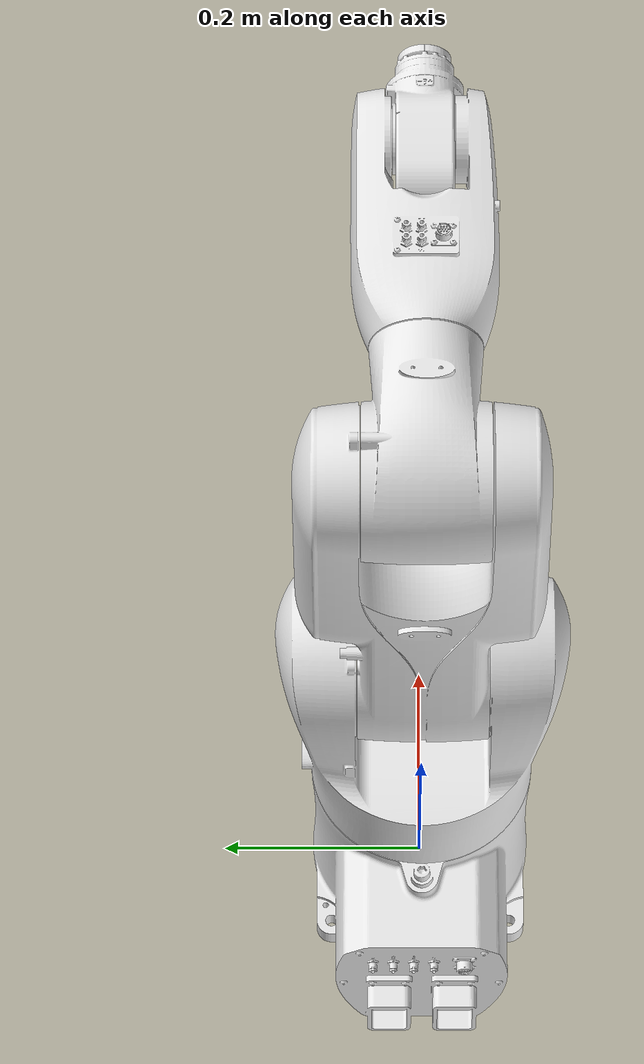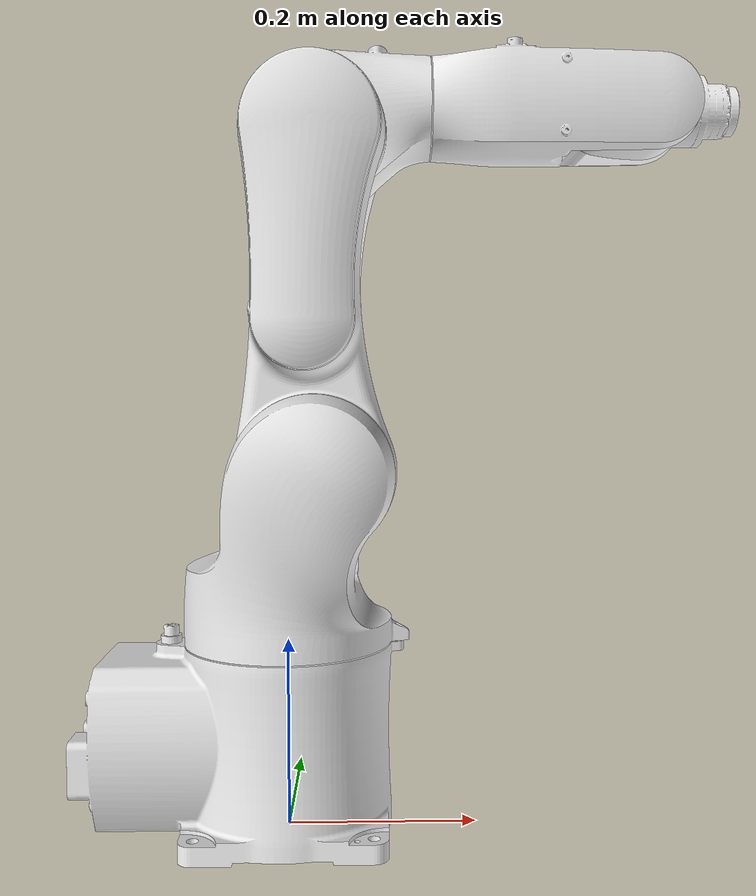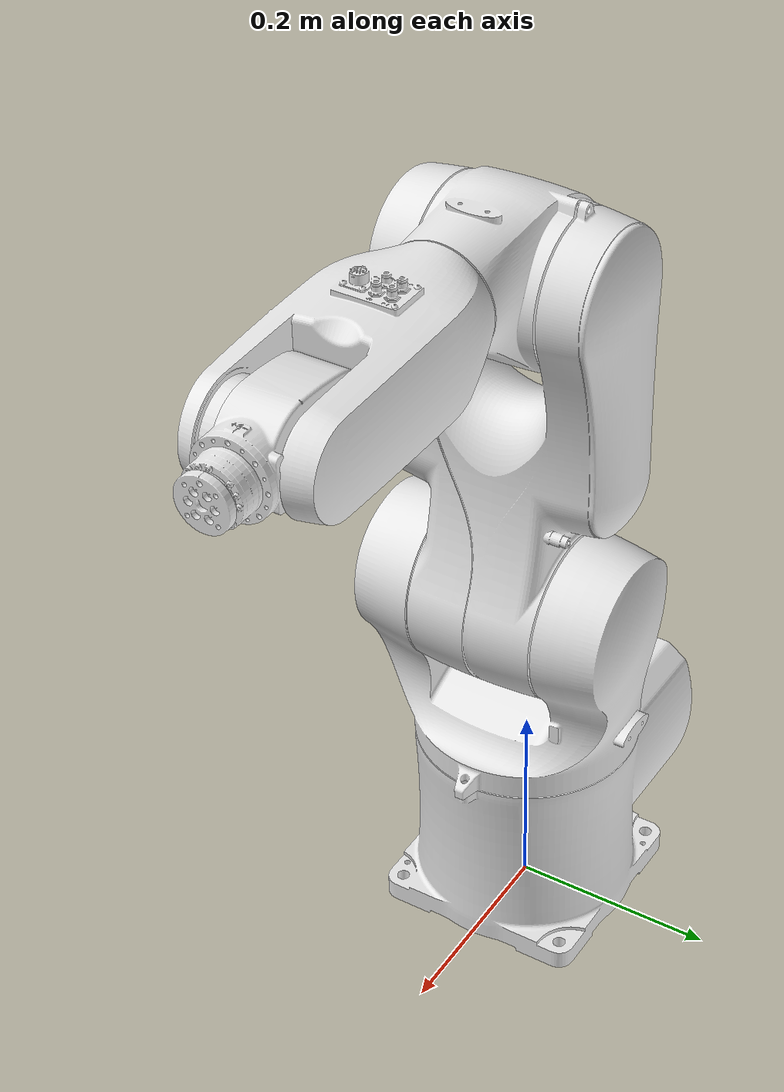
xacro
<?xml version="1.0"?>
<!-- XB6 manipulator -->
<robot name="XB6" xmlns:xacro="http://www.ros.org/wiki/xacro">

  <!-- Constants for robot dimensions -->
  <!-- Constants for robot dimensions -->
  <xacro:property name="PI" value="3.1415926535897931"/>
  <xacro:property name="mass" value="1" /> <!-- arbitrary value for mass -->
  <xacro:property name="width" value="0.1" /> <!-- Square dimensions (widthxwidth) of beams -->
  <xacro:property name="height1" value="2" /> <!-- Link 1 -->
  <xacro:property name="height2" value="1" /> <!-- Link 2 -->
  <xacro:property name="height3" value="1" /> <!-- Link 3 -->
  <xacro:property name="camera_link" value="0.05" /> <!-- Size of square 'camera' box -->
  <xacro:property name="axel_offset" value="0.05" /> <!-- Space btw top of beam and the each joint -->

  <!-- Import all Gazebo-customization elements, including Gazebo colors -->
  <xacro:include filename="$(find XB6_description)/urdf/XB6.gazebo" />
  <!-- Import Rviz colors -->
  <xacro:include filename="$(find XB6_description)/urdf/materials.xacro" />

  <!-- Used for fixing robot to Gazebo 'base_link' -->
  <link name="world"/>

  <joint name="fixed" type="fixed">
    <parent link="world"/>
    <child link="XB6_base"/>
  </joint>

<!--                           base_link                             -->

  <link name="XB6_base">
    <visual>
      <geometry>
        <mesh filename="package://XB6_description/meshes/visual/XB6_base.stl" scale="0.001 0.001 0.001"/>
      </geometry>
       <origin rpy="0 0 0" xyz="0.0 0.0 0.0"/>
       <material name="white"/>
    </visual>
    <inertial>

  <mass value="6.017195265"/>
  <inertia ixx="0.0360869293925" ixy="0.000115216693353" ixz="-1.7544333693e-05" iyy="0.0284183462347" iyz="-1.3689740881e-05" izz="0.0330286412795"/>
  <origin rpy="0 0 0" xyz="0.000196283077 -0.003194724222 0.227348149147"/>

    </inertial>
    <collision>
      <geometry>
        <mesh filename="package://XB6_description/meshes/collision/XB6_base.stl" scale="0.001 0.001 0.001"/>
      </geometry>
      <origin rpy="0 0 0" xyz="0.0 0.0 0.0"/>
    </collision>
  </link>

  <joint name="joint1" type="revolute">
    <parent link="XB6_base"/>
    <child link="XB6_link1"/>
   <limit effort="223.088" lower="-2.9670597284" upper="2.9670597284" velocity="6.544984695"/>
    <axis xyz="0 0 1"/>
    <origin rpy="0 0 0" xyz="0.0 0.0 0.20"/>

</joint>

  <transmission name="tran1">
    <type>transmission_interface/SimpleTransmission</type>
    <joint name="joint1">
      <hardwareInterface>EffortJointInterface</hardwareInterface>
    </joint>
    <actuator name="motor1">
      <hardwareInterface>EffortJointInterface</hardwareInterface>
      <mechanicalReduction>1</mechanicalReduction>
    </actuator>
  </transmission>

<!--                                         XB6_link 1                                             -->

  <link name="XB6_link1">
    <visual>
      <geometry>
        <mesh filename="package://XB6_description/meshes/visual/XB6_link1.stl" scale="0.001 0.001 0.001"/>
      </geometry>
      <origin rpy="0 0 0" xyz="0.0 0 0.0"/>
      <material name="white"/>
    </visual>

    <inertial>

     <mass value="5.398500"/>
     <inertia ixx="0.062766" ixy="0.002246" ixz="0.004636" iyy="0.043954" iyz="0.008292" izz="0.330216"/>
     <origin rpy="0 0 0" xyz="0.048526 0.021590 0.105190"/>

     </inertial>

    <collision>
      <geometry>
        <mesh filename="package://XB6_description/meshes/collision/XB6_link1.stl" scale="0.001 0.001 0.001"/>
      </geometry>
       <origin rpy="0 0 0" xyz="0.0 0  0.0"/>
    </collision>
  </link>

  <joint name="joint2" type="revolute">
    <parent link="XB6_link1"/>
    <child link="XB6_link2"/>
    <limit effort="278" lower="-1.6580627894" upper="2.3561944902" velocity="5.235987756"/>
    <axis xyz="0 1 0"/>
	<origin rpy="0 0 0" xyz="0.03 0.0 0.18"/>
    </joint>

   <transmission name="tran2">
     <type>transmission_interface/SimpleTransmission</type>
    <joint name="joint2">
      <hardwareInterface>EffortJointInterface</hardwareInterface>
    </joint>
    <actuator name="motor2">
      <hardwareInterface>EffortJointInterface</hardwareInterface>
      <mechanicalReduction>1</mechanicalReduction>
    </actuator>
  </transmission>

<!--                                XB6_link 2                    -->

  <link name="XB6_link2">
    <visual>
      <geometry>
        <mesh filename="package://XB6_description/meshes/visual/XB6_link2.stl" scale="0.001 0.001 0.001"/>
      </geometry>
     <origin rpy="0 0 0" xyz="0 0 0.0"/>
     <material name="white"/>
    </visual>

    <inertial>
    <mass value="17.216886"/>
    <inertia ixx="0.322579" ixy="0.000116" ixz="-0.003241" iyy="0.717652" iyz="0.004003" izz="0.079577"/>
    <origin rpy="0 0 0" xyz="-0.002827 0.022603 0.099333"/>
    </inertial>

    <collision>
      <geometry>
        <mesh filename="package://XB6_description/meshes/collision/XB6_link2.stl" scale="0.001 0.001 0.001"/>
      </geometry>
      <origin rpy="0 0 0" xyz="0 0 0.0"/>
    </collision>
  </link>

  <joint name="joint3" type="revolute">
    <parent link="XB6_link2"/>
    <child link="XB6_link3"/>
   <limit effort="210" lower="-3.6651914292" upper="1.1519173063" velocity="6.544984695"/>
    <axis xyz="0 1 0"/>
    <origin rpy="0 0 0" xyz="0.0 0.0 0.34"/>

  </joint>

   <transmission name="tran3">
    <type>transmission_interface/SimpleTransmission</type>
    <joint name="joint3">
      <hardwareInterface>EffortJointInterface</hardwareInterface>
    </joint>
    <actuator name="motor3">
      <hardwareInterface>EffortJointInterface</hardwareInterface>
      <mechanicalReduction>1</mechanicalReduction>
    </actuator>
  </transmission>

  <link name="XB6_link3">
    <visual>
      <geometry>
        <mesh filename="package://XB6_description/meshes/visual/XB6_link3.stl" scale="0.001 0.001 0.001"/>
      </geometry>
	<origin rpy="0 0 0" xyz="0.0 0.0 0.0"/>
      <material name="white"/>
    </visual>

    <inertial>

    <mass value="6.795353"/>
    <inertia ixx="0.012171" ixy="0.000103" ixz="0.006378" iyy="0.319676" iyz="0.000070" izz="0.027475"/>
    <origin rpy="0 0 0" xyz="0.035922 0.000116 0.009259"/>

    </inertial>

    <collision>
      <geometry>
        <mesh filename="package://XB6_description/meshes/collision/XB6_link3.stl" scale="0.001 0.001 0.001"/>
      </geometry>
         <origin rpy="0 0 0" xyz="0.0 0.0 0.0"/>
      </collision>
  </link>

  <joint name="joint4" type="revolute">
    <parent link="XB6_link3"/>
    <child link="XB6_link4"/>
    <limit effort="77.355" lower="-2.9670597284" upper="2.9670597284" velocity="6.544984695"/>
<!--     lower="-2.79" upper="2.79" -->
    <axis xyz="1 0 0"/>
    <origin rpy="0 0 0" xyz="0.12 0.0 0.035"/>
  </joint>

  <transmission name="tran4">
    <type>transmission_interface/SimpleTransmission</type>
    <joint name="joint4">
      <hardwareInterface>EffortJointInterface</hardwareInterface>
    </joint>
    <actuator name="motor4">
      <hardwareInterface>EffortJointInterface</hardwareInterface>
      <mechanicalReduction>1</mechanicalReduction>
    </actuator>
  </transmission>

  <link name="XB6_link4">
    <visual>
      <geometry>
        <mesh filename="package://XB6_description/meshes/visual/XB6_link4.stl" scale="0.001 0.001 0.001"/>
      </geometry>
	<origin rpy="0 0 0" xyz="0.0 0.0 0.0"/>
      <material name="white"/>
    </visual>
    <inertial>

    <mass value="3.999356"/>
    <inertia ixx="0.167289" ixy="0.002181" ixz="-0.000006" iyy="0.020615" iyz="0.000031" izz="0.025169"/>
    <origin rpy="0 0 0" xyz="0.120344 0.004572 -0.000141"/>

    </inertial>
    <collision>
      <geometry>
        <mesh filename="package://XB6_description/meshes/collision/XB6_link4.stl" scale="0.001 0.001 0.001"/>
      </geometry>
	<origin rpy="0 0 0" xyz="0.0 0.0 0.0"/>
    </collision>
  </link>

  <joint name="joint5" type="revolute">
    <parent link="XB6_link4"/>
    <child link="XB6_link5"/>
   <limit effort="44.3232" lower="-2.3561944902" upper="2.3561944902" velocity="6.7020643277"/>
    <axis xyz="0 1 0"/>
   <origin rpy="0 0 0" xyz="0.225 0.0 0.0"/>
  </joint>

  <transmission name="tran5">
    <type>transmission_interface/SimpleTransmission</type>
    <joint name="joint5">
      <hardwareInterface>EffortJointInterface</hardwareInterface>
    </joint>
    <actuator name="motor5">
      <hardwareInterface>EffortJointInterface</hardwareInterface>
      <mechanicalReduction>1</mechanicalReduction>
    </actuator>
  </transmission>

  <link name="XB6_link5">
    <visual>
      <geometry>
        <mesh filename="package://XB6_description/meshes/visual/XB6_link5.stl" scale="0.001 0.001 0.001"/>
      </geometry>
       <origin rpy="0 0 0" xyz="0 0 0"/>
      <material name="white"/>

      </visual>
    <inertial>

      <mass value="2.484109"/>
    <inertia ixx="0.001308" ixy="-0.000005" ixz="-0.000063" iyy="0.035775" iyz="0.000005" izz="0.006039"/>
      <origin rpy="0 0 0" xyz="0.004529 0.000438 0.000626"/>

    </inertial>

    <collision>
      <geometry>
        <mesh filename="package://XB6_description/meshes/collision/XB6_link5.stl" scale="0.001 0.001 0.001"/>
      </geometry>
       <origin rpy="0 0 0" xyz="0 0 0"/>
    </collision>
  </link>

  <joint name="joint6" type="revolute">
    <parent link="XB6_link5"/>
    <child link="XB6_link6"/>
    <limit effort="29.925" lower="-6.2831853072" upper="6.2831853072" velocity="10.471975512"/>
    <axis xyz="1 0 0"/>
    <origin xyz="0.090 0.0 0.0" rpy="0.0 0.0 0.0" />
  </joint>

  <transmission name="tran6">
    <type>transmission_interface/SimpleTransmission</type>
    <joint name="joint6">
      <hardwareInterface>EffortJointInterface</hardwareInterface>
    </joint>
    <actuator name="motor6">
      <hardwareInterface>EffortJointInterface</hardwareInterface>
      <mechanicalReduction>1</mechanicalReduction>
    </actuator>
  </transmission>

  <link name="XB6_link6">
    <visual>
      <geometry>
        <mesh filename="package://XB6_description/meshes/visual/XB6_link6.stl" scale="0.001 0.001 0.001"/>
      </geometry>
	<origin rpy="0 0 0" xyz="0.0 0.0 0.0"/>
      <material name="white"/>
    </visual>

    <inertial>

      <mass value="0.048215"/>
      <inertia ixx="0.007264" ixy="-0.000000" ixz="-0.000000" iyy="0.000007" iyz="-0.000000" izz="0.000007"/>
      <origin rpy="0 0 0" xyz="0.003183 -0.000000 -0.000118"/>

    </inertial>

    <collision>
      <geometry>
        <mesh filename="package://XB6_description/meshes/collision/XB6_link6.stl" scale="0.001 0.001 0.001"/>
      </geometry>
	<origin rpy="0 0 0" xyz="0.0 0.0 0.0"/>
    </collision>
  </link>

  <joint name="camera_joint_1" type="fixed">
    <axis xyz="0 0 0" />
    <origin rpy="0 0 0" xyz="0 0 0"/>
    <parent link="world"/>
    <child link="camera_link_1"/>
  </joint>

  <!-- Camera -->
  <link name="camera_link_1">
    <collision>
      <origin xyz="0 0 0" rpy="0 0 0"/>
      <geometry>
	<box size="${camera_link} ${camera_link} ${camera_link}"/>
      </geometry>
    </collision>

    <visual>
      <origin xyz="0 0 0" rpy="0 0 0"/>
      <geometry>
	<box size="${camera_link} ${camera_link} ${camera_link}"/>
      </geometry>
      <material name="red"/>
    </visual>

    <inertial>
      <mass value="1e-5" />
      <origin xyz="0 0 0" rpy="0 0 0"/>
      <inertia ixx="1e-6" ixy="0" ixz="0" iyy="1e-6" iyz="0" izz="1e-6" />
    </inertial>
  </link>

  <joint name="camera_optical_joint_1" type="fixed">
    <!-- these values have to be these values otherwise the gazebo camera image
        won't be aligned properly with the frame it is supposedly originating from -->
    <origin xyz="0 0 0" rpy="${-pi/2} 0 ${-pi/2}"/>
    <parent link="camera_link_1"/>
    <child link="camera_link_optical_1"/>
  </joint>

  <link name="camera_link_optical_1">
  </link>

  <joint name="camera_joint_2" type="fixed">
    <axis xyz="0 0 0" />
    <origin rpy="0 0 0" xyz="0 0 0"/>
    <parent link="world"/>
    <child link="camera_link_2"/>
  </joint>

  <!-- Camera -->
  <link name="camera_link_2">
    <collision>
      <origin xyz="0 0 0" rpy="0 0 0"/>
      <geometry>
	<box size="${camera_link} ${camera_link} ${camera_link}"/>
      </geometry>
    </collision>

    <visual>
      <origin xyz="0 0 0" rpy="0 0 0"/>
      <geometry>
	<box size="${camera_link} ${camera_link} ${camera_link}"/>
      </geometry>
      <material name="red"/>
    </visual>

    <inertial>
      <mass value="1e-5" />
      <origin xyz="0 0 0" rpy="0 0 0"/>
      <inertia ixx="1e-6" ixy="0" ixz="0" iyy="1e-6" iyz="0" izz="1e-6" />
    </inertial>
  </link>

  <joint name="camera_optical_joint_2" type="fixed">
    <!-- these values have to be these values otherwise the gazebo camera image
        won't be aligned properly with the frame it is supposedly originating from -->
    <origin xyz="0 0 0" rpy="${-pi/2} 0 ${-pi/2}"/>
    <parent link="camera_link_2"/>
    <child link="camera_link_optical_2"/>
  </joint>

  <link name="camera_link_optical_2">
  </link>

  <joint name="camera_joint_3" type="fixed">
    <axis xyz="0 0 0" />
    <origin rpy="0 0 0" xyz="0 0 0"/>
    <parent link="world"/>
    <child link="camera_link_3"/>
  </joint>

  <!-- Camera -->
  <link name="camera_link_3">
    <collision>
      <origin xyz="0 0 0" rpy="0 0 0"/>
      <geometry>
	<box size="${camera_link} ${camera_link} ${camera_link}"/>
      </geometry>
    </collision>

    <visual>
      <origin xyz="0 0 0" rpy="0 0 0"/>
      <geometry>
	<box size="${camera_link} ${camera_link} ${camera_link}"/>
      </geometry>
      <material name="red"/>
    </visual>

    <inertial>
      <mass value="1e-5" />
      <origin xyz="0 0 0" rpy="0 0 0"/>
      <inertia ixx="1e-6" ixy="0" ixz="0" iyy="1e-6" iyz="0" izz="1e-6" />
    </inertial>
  </link>

  <joint name="camera_optical_joint_3" type="fixed">
    <!-- these values have to be these values otherwise the gazebo camera image
        won't be aligned properly with the frame it is supposedly originating from -->
    <origin xyz="0 0 0" rpy="${-pi/2} 0 ${-pi/2}"/>
    <parent link="camera_link_3"/>
    <child link="camera_link_optical_3"/>
  </joint>

  <link name="camera_link_optical_3">
  </link>

</robot>
